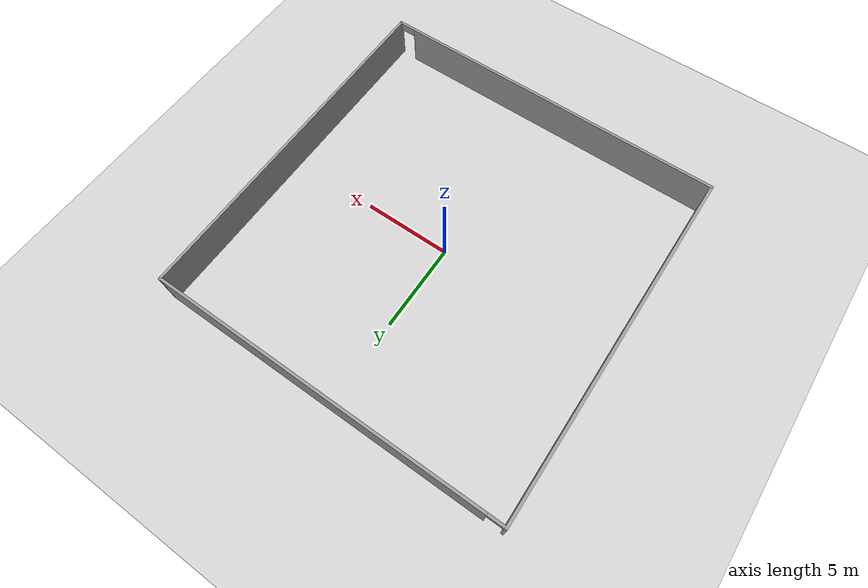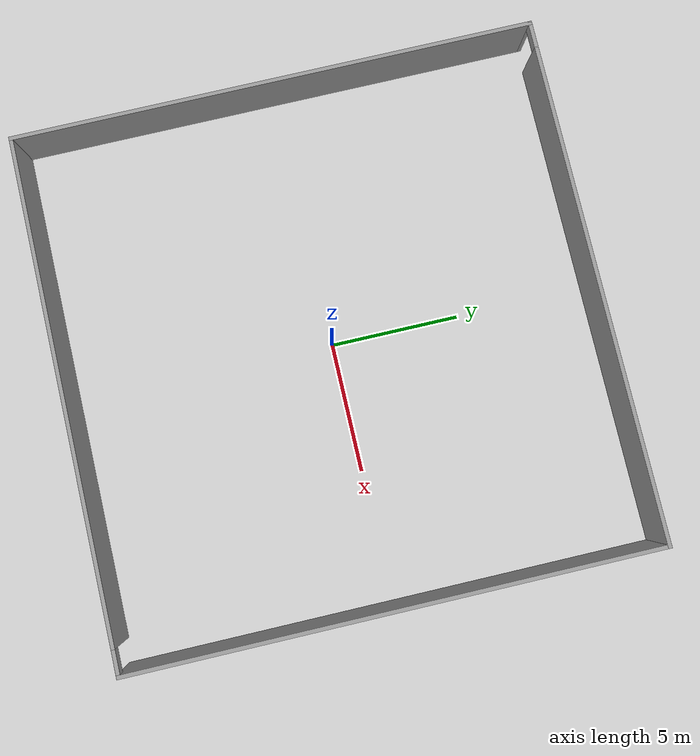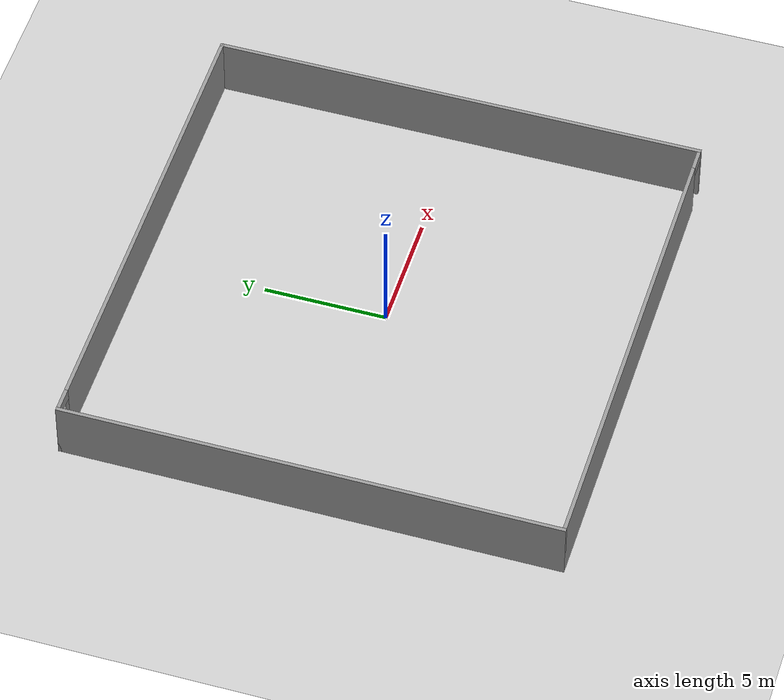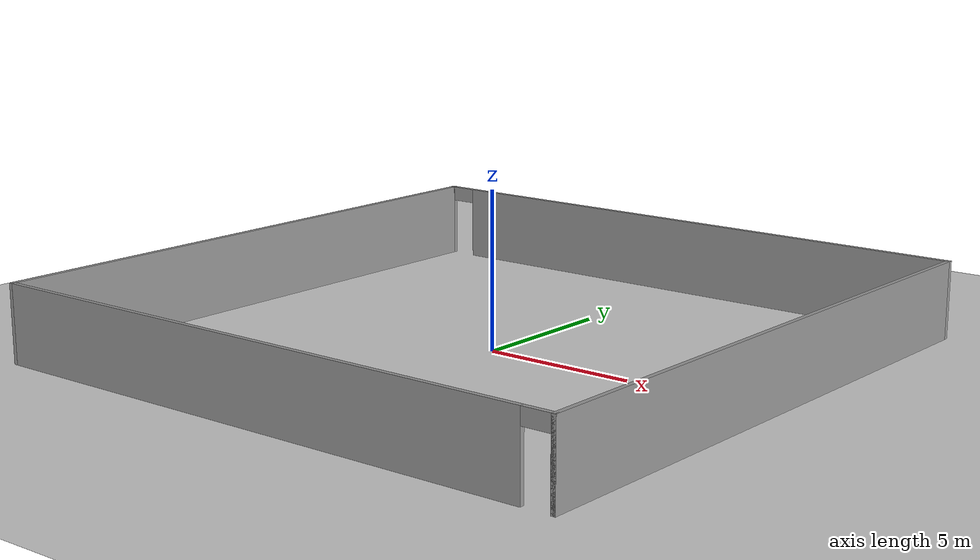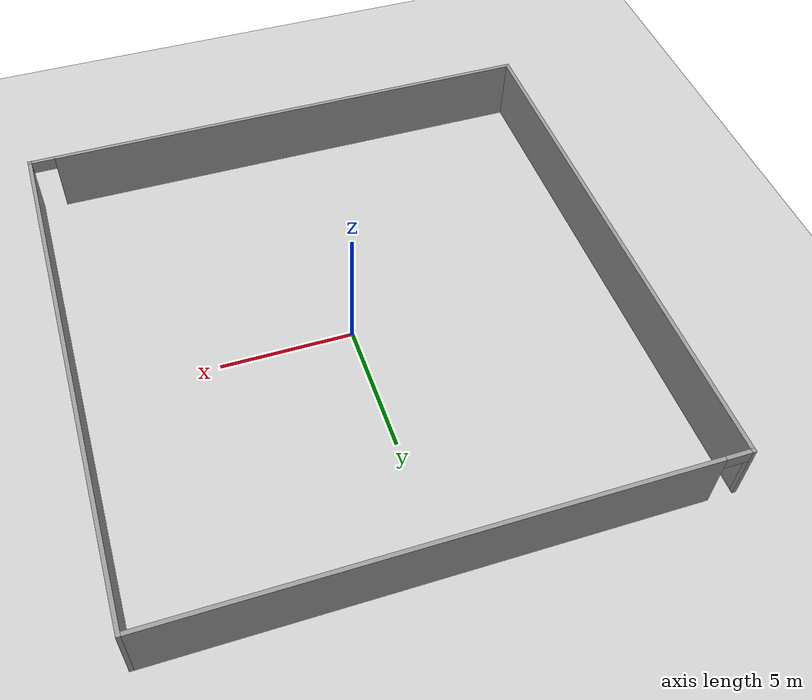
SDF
<sdf version="1.6">
 <world name="default">
  <light name="sun" type="directional">
   <pose>0 0 10 0 -0 0</pose>
   <diffuse>0.8 0.8 0.8 1</diffuse>
   <specular>0.1 0.1 0.1 1</specular>
   <attenuation>
    <range>1000</range>
    <constant>0.9</constant>
    <linear>0.01</linear>
    <quadratic>0.001</quadratic>
   </attenuation>
   <direction>-0.5 0.5 -1</direction>
  </light>
  <model name="ground_plane">
   <static>1</static>
   <link name="link">
    <collision name="collision">
     <geometry><plane><normal>0 0 1</normal><size>100 100</size></plane></geometry>
     <surface><friction><ode><mu>100</mu><mu2>50</mu2></ode></friction></surface>
    </collision>
    <visual name="visual">
     <cast_shadows>0</cast_shadows>
     <geometry><plane><normal>0 0 1</normal><size>100 100</size></plane></geometry>
     <material>
      <script><uri>file://media/materials/scripts/gazebo.material</uri><name>Gazebo/Grey</name></script>
     </material>
    </visual>
   </link>
  </model>
  <gravity>0 0 -9.8</gravity>
  <magnetic_field>6e-06 2.3e-05 -4.2e-05</magnetic_field>
  <atmosphere type="adiabatic"/>
  <physics name="default_physics" default="0" type="ode">
   <max_step_size>0.001</max_step_size>
   <real_time_factor>1</real_time_factor>
   <real_time_update_rate>1000</real_time_update_rate>
  </physics>
  <scene><ambient>0.4 0.4 0.4 1</ambient><background>0.7 0.7 0.7 1</background><shadows>1</shadows></scene>
  <spherical_coordinates>
   <surface_model>EARTH_WGS84</surface_model>
   <latitude_deg>0</latitude_deg>
   <longitude_deg>0</longitude_deg>
   <elevation>0</elevation>
   <heading_deg>0</heading_deg>
  </spherical_coordinates>
  <model name="20x20">
   <link name="Wall_0">
    <collision name="Wall_0_Collision">
     <geometry><box><size>20.25 0.15 2.5</size></box></geometry>
     <pose>0 0 1.25 0 -0 0</pose>
    </collision>
    <visual name="Wall_0_Visual">
     <pose>0 0 1.25 0 -0 0</pose>
     <geometry><box><size>20.25 0.15 2.5</size></box></geometry>
     <material>
      <script><uri>file://media/materials/scripts/gazebo.material</uri><name>Gazebo/Grey</name></script>
      <ambient>1 1 1 1</ambient>
     </material>
    </visual>
    <pose>-10.05 0 0 0 0 -1.5708</pose>
   </link>
   <link name="Wall_1">
    <pose>0 -10.05 0 0 -0 0</pose>
    <visual name="Wall_1_Visual_0">
     <pose>-0.52225 0 1.25 0 -0 0</pose>
     <geometry><box><size>19.2055 0.15 2.5</size></box></geometry>
     <material>
      <script><uri>file://media/materials/scripts/gazebo.material</uri><name>Gazebo/Grey</name></script>
      <ambient>1 1 1 1</ambient>
     </material>
    </visual>
    <collision name="Wall_1_Collision_0">
     <geometry><box><size>19.2055 0.15 2.5</size></box></geometry>
     <pose>-0.52225 0 1.25 0 -0 0</pose>
    </collision>
    <visual name="Wall_1_Visual_1">
     <pose>10.0527 0 1.25 0 -0 0</pose>
     <geometry><box><size>0.1445 0.15 2.5</size></box></geometry>
     <material>
      <script><uri>file://media/materials/scripts/gazebo.material</uri><name>Gazebo/Grey</name></script>
      <ambient>1 1 1 1</ambient>
     </material>
    </visual>
    <collision name="Wall_1_Collision_1">
     <geometry><box><size>0.1445 0.15 2.5</size></box></geometry>
     <pose>10.0527 0 1.25 0 -0 0</pose>
    </collision>
    <visual name="Wall_1_Visual_2">
     <pose>9.5305 0 2.25 0 -0 0</pose>
     <geometry><box><size>0.9 0.15 0.5</size></box></geometry>
     <material>
      <script><uri>file://media/materials/scripts/gazebo.material</uri><name>Gazebo/Grey</name></script>
      <ambient>1 1 1 1</ambient>
     </material>
    </visual>
    <collision name="Wall_1_Collision_2">
     <geometry><box><size>0.9 0.15 0.5</size></box></geometry>
     <pose>9.5305 0 2.25 0 -0 0</pose>
    </collision>
   </link>
   <link name="Wall_4">
    <collision name="Wall_4_Collision">
     <geometry><box><size>20.25 0.15 2.5</size></box></geometry>
     <pose>0 0 1.25 0 -0 0</pose>
    </collision>
    <visual name="Wall_4_Visual">
     <pose>0 0 1.25 0 -0 0</pose>
     <geometry><box><size>20.25 0.15 2.5</size></box></geometry>
     <material>
      <script><uri>file://media/materials/scripts/gazebo.material</uri><name>Gazebo/Grey</name></script>
      <ambient>1 1 1 1</ambient>
     </material>
    </visual>
    <pose>10.05 0 0 0 -0 1.5708</pose>
   </link>
   <link name="Wall_5">
    <pose>0 10.05 0 0 -0 3.14159</pose>
    <visual name="Wall_5_Visual_0">
     <pose>-0.525461 0 1.25 0 -0 0</pose>
     <geometry><box><size>19.1991 0.15 2.5</size></box></geometry>
     <material>
      <script><uri>file://media/materials/scripts/gazebo.material</uri><name>Gazebo/Grey</name></script>
      <ambient>1 1 1 1</ambient>
     </material>
    </visual>
    <collision name="Wall_5_Collision_0">
     <geometry><box><size>19.1991 0.15 2.5</size></box></geometry>
     <pose>-0.525461 0 1.25 0 -0 0</pose>
    </collision>
    <visual name="Wall_5_Visual_1">
     <pose>10.0495 0 1.25 0 -0 0</pose>
     <geometry><box><size>0.150923 0.15 2.5</size></box></geometry>
     <material>
      <script><uri>file://media/materials/scripts/gazebo.material</uri><name>Gazebo/Grey</name></script>
      <ambient>1 1 1 1</ambient>
     </material>
    </visual>
    <collision name="Wall_5_Collision_1">
     <geometry><box><size>0.150923 0.15 2.5</size></box></geometry>
     <pose>10.0495 0 1.25 0 -0 0</pose>
    </collision>
    <visual name="Wall_5_Visual_2">
     <pose>9.52408 0 2.25 0 -0 0</pose>
     <geometry><box><size>0.9 0.15 0.5</size></box></geometry>
     <material>
      <script><uri>file://media/materials/scripts/gazebo.material</uri><name>Gazebo/Grey</name></script>
      <ambient>1 1 1 1</ambient>
     </material>
    </visual>
    <collision name="Wall_5_Collision_2">
     <geometry><box><size>0.9 0.15 0.5</size></box></geometry>
     <pose>9.52408 0 2.25 0 -0 0</pose>
    </collision>
   </link>
   <static>1</static>
  </model>
 </world>
</sdf>
